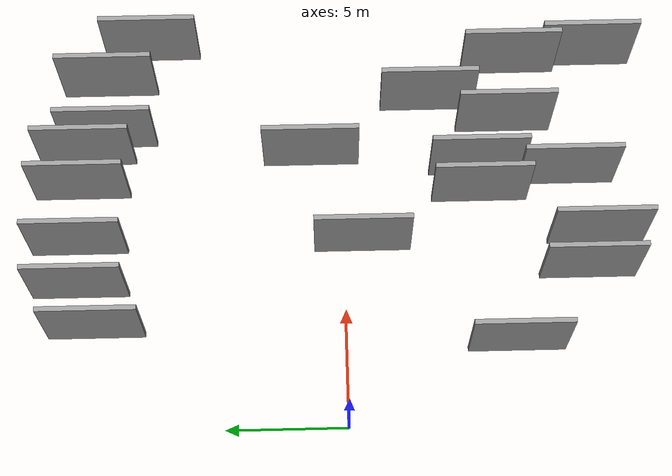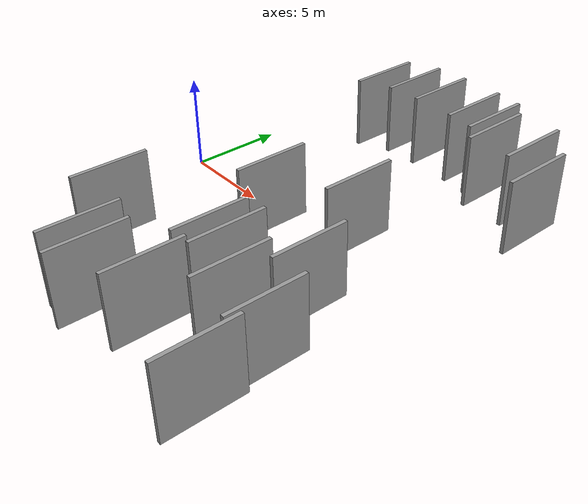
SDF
<sdf version="1.6">
 <world name="default">
  <scene>
   <sky><clouds><speed>12</speed></clouds></sky>
   <ambient>0.4 0.4 0.4 1</ambient>
   <background>0.7 0.7 0.7 1</background>
   <shadows>1</shadows>
  </scene>
  <gravity>0 0 -9.8066</gravity>
  <magnetic_field>6e-06 2.3e-05 -4.2e-05</magnetic_field>
  <physics default="0" name="default_physics" type="ode">
   <ode>
    <solver>
     <type>quick</type>
     <iters>10</iters>
     <sor>1.0</sor>
     <use_dynamic_moi_rescaling>0</use_dynamic_moi_rescaling>
    </solver>
    <constraints>
     <cfm>0</cfm>
     <erp>0.2</erp>
     <contact_max_correcting_vel>100</contact_max_correcting_vel>
     <contact_surface_layer>0.001</contact_surface_layer>
    </constraints>
   </ode>
   <max_step_size>0.004</max_step_size>
   <real_time_factor>1</real_time_factor>
   <real_time_update_rate>250</real_time_update_rate>
  </physics>
  <light name="sun" type="directional">
   <pose>0 0 10 0 0 0</pose>
   <diffuse>0.8 0.8 0.8 1</diffuse>
   <specular>0.2 0.2 0.2 1</specular>
   <attenuation>
    <range>1000</range>
    <constant>0.9</constant>
    <linear>0.01</linear>
    <quadratic>0.001</quadratic>
   </attenuation>
   <direction>-0.5 0.1 -0.9</direction>
  </light>
  <model name="grey_wall_1">
   <static>1</static>
   <pose>6.3063 -10.0664 0.0 0.000000 0.000000 1.570796</pose>
   <link name="link">
    <pose>0 0 2.00 0 0 0</pose>
    <collision name="collision"><geometry><box><size>4.00 0.2 4.00</size></box></geometry></collision>
    <visual name="visual">
     <cast_shadows>0</cast_shadows>
     <geometry><box><size>4.00 0.2 4.00</size></box></geometry>
     <material>
      <script>
       <uri>model://grey_wall/materials/scripts</uri>
       <uri>model://grey_wall/materials/textures</uri>
       <name>vrc/grey_wall</name>
      </script>
     </material>
    </visual>
   </link>
  </model>
  <model name="grey_wall_2">
   <static>1</static>
   <pose>4.1061 10.2583 0.0 0.000000 0.000000 1.570796</pose>
   <link name="link">
    <pose>0 0 2.00 0 0 0</pose>
    <collision name="collision"><geometry><box><size>4.00 0.2 4.00</size></box></geometry></collision>
    <visual name="visual">
     <cast_shadows>0</cast_shadows>
     <geometry><box><size>4.00 0.2 4.00</size></box></geometry>
     <material>
      <script>
       <uri>model://grey_wall/materials/scripts</uri>
       <uri>model://grey_wall/materials/textures</uri>
       <name>vrc/grey_wall</name>
      </script>
     </material>
    </visual>
   </link>
  </model>
  <model name="grey_wall_3">
   <static>1</static>
   <pose>5.8660 10.9579 0.0 0.000000 0.000000 1.570796</pose>
   <link name="link">
    <pose>0 0 2.00 0 0 0</pose>
    <collision name="collision"><geometry><box><size>4.00 0.2 4.00</size></box></geometry></collision>
    <visual name="visual">
     <cast_shadows>0</cast_shadows>
     <geometry><box><size>4.00 0.2 4.00</size></box></geometry>
     <material>
      <script>
       <uri>model://grey_wall/materials/scripts</uri>
       <uri>model://grey_wall/materials/textures</uri>
       <name>vrc/grey_wall</name>
      </script>
     </material>
    </visual>
   </link>
  </model>
  <model name="grey_wall_4">
   <static>1</static>
   <pose>7.7564 11.0392 0.0 0.000000 0.000000 1.570796</pose>
   <link name="link">
    <pose>0 0 2.00 0 0 0</pose>
    <collision name="collision"><geometry><box><size>4.00 0.2 4.00</size></box></geometry></collision>
    <visual name="visual">
     <cast_shadows>0</cast_shadows>
     <geometry><box><size>4.00 0.2 4.00</size></box></geometry>
     <material>
      <script>
       <uri>model://grey_wall/materials/scripts</uri>
       <uri>model://grey_wall/materials/textures</uri>
       <name>vrc/grey_wall</name>
      </script>
     </material>
    </visual>
   </link>
  </model>
  <model name="grey_wall_5">
   <static>1</static>
   <pose>7.8040 -10.4779 0.0 0.000000 0.000000 1.570796</pose>
   <link name="link">
    <pose>0 0 2.00 0 0 0</pose>
    <collision name="collision"><geometry><box><size>4.00 0.2 4.00</size></box></geometry></collision>
    <visual name="visual">
     <cast_shadows>0</cast_shadows>
     <geometry><box><size>4.00 0.2 4.00</size></box></geometry>
     <material>
      <script>
       <uri>model://grey_wall/materials/scripts</uri>
       <uri>model://grey_wall/materials/textures</uri>
       <name>vrc/grey_wall</name>
      </script>
     </material>
    </visual>
   </link>
  </model>
  <model name="grey_wall_6">
   <static>1</static>
   <pose>11.5746 1.3347 0.0 0.000000 0.000000 1.570796</pose>
   <link name="link">
    <pose>0 0 2.00 0 0 0</pose>
    <collision name="collision"><geometry><box><size>4.00 0.2 4.00</size></box></geometry></collision>
    <visual name="visual">
     <cast_shadows>0</cast_shadows>
     <geometry><box><size>4.00 0.2 4.00</size></box></geometry>
     <material>
      <script>
       <uri>model://grey_wall/materials/scripts</uri>
       <uri>model://grey_wall/materials/textures</uri>
       <name>vrc/grey_wall</name>
      </script>
     </material>
    </visual>
   </link>
  </model>
  <model name="grey_wall_7">
   <static>1</static>
   <pose>15.6903 -7.1706 0.0 0.000000 0.000000 1.570796</pose>
   <link name="link">
    <pose>0 0 2.00 0 0 0</pose>
    <collision name="collision"><geometry><box><size>4.00 0.2 4.00</size></box></geometry></collision>
    <visual name="visual">
     <cast_shadows>0</cast_shadows>
     <geometry><box><size>4.00 0.2 4.00</size></box></geometry>
     <material>
      <script>
       <uri>model://grey_wall/materials/scripts</uri>
       <uri>model://grey_wall/materials/textures</uri>
       <name>vrc/grey_wall</name>
      </script>
     </material>
    </visual>
   </link>
  </model>
  <model name="grey_wall_8">
   <static>1</static>
   <pose>14.0277 -3.6547 0.0 0.000000 0.000000 1.570796</pose>
   <link name="link">
    <pose>0 0 2.00 0 0 0</pose>
    <collision name="collision"><geometry><box><size>4.00 0.2 4.00</size></box></geometry></collision>
    <visual name="visual">
     <cast_shadows>0</cast_shadows>
     <geometry><box><size>4.00 0.2 4.00</size></box></geometry>
     <material>
      <script>
       <uri>model://grey_wall/materials/scripts</uri>
       <uri>model://grey_wall/materials/textures</uri>
       <name>vrc/grey_wall</name>
      </script>
     </material>
    </visual>
   </link>
  </model>
  <model name="grey_wall_9">
   <static>1</static>
   <pose>16.6101 8.0653 0.0 0.000000 0.000000 1.570796</pose>
   <link name="link">
    <pose>0 0 2.00 0 0 0</pose>
    <collision name="collision"><geometry><box><size>4.00 0.2 4.00</size></box></geometry></collision>
    <visual name="visual">
     <cast_shadows>0</cast_shadows>
     <geometry><box><size>4.00 0.2 4.00</size></box></geometry>
     <material>
      <script>
       <uri>model://grey_wall/materials/scripts</uri>
       <uri>model://grey_wall/materials/textures</uri>
       <name>vrc/grey_wall</name>
      </script>
     </material>
    </visual>
   </link>
  </model>
  <model name="grey_wall_10">
   <static>1</static>
   <pose>12.9653 -6.8424 0.0 0.000000 0.000000 1.570796</pose>
   <link name="link">
    <pose>0 0 2.00 0 0 0</pose>
    <collision name="collision"><geometry><box><size>4.00 0.2 4.00</size></box></geometry></collision>
    <visual name="visual">
     <cast_shadows>0</cast_shadows>
     <geometry><box><size>4.00 0.2 4.00</size></box></geometry>
     <material>
      <script>
       <uri>model://grey_wall/materials/scripts</uri>
       <uri>model://grey_wall/materials/textures</uri>
       <name>vrc/grey_wall</name>
      </script>
     </material>
    </visual>
   </link>
  </model>
  <model name="grey_wall_11">
   <static>1</static>
   <pose>3.2163 -6.9590 0.0 0.000000 0.000000 1.570796</pose>
   <link name="link">
    <pose>0 0 2.00 0 0 0</pose>
    <collision name="collision"><geometry><box><size>4.00 0.2 4.00</size></box></geometry></collision>
    <visual name="visual">
     <cast_shadows>0</cast_shadows>
     <geometry><box><size>4.00 0.2 4.00</size></box></geometry>
     <material>
      <script>
       <uri>model://grey_wall/materials/scripts</uri>
       <uri>model://grey_wall/materials/textures</uri>
       <name>vrc/grey_wall</name>
      </script>
     </material>
    </visual>
   </link>
  </model>
  <model name="grey_wall_12">
   <static>1</static>
   <pose>10.5106 -9.3970 0.0 0.000000 0.000000 1.570796</pose>
   <link name="link">
    <pose>0 0 2.00 0 0 0</pose>
    <collision name="collision"><geometry><box><size>4.00 0.2 4.00</size></box></geometry></collision>
    <visual name="visual">
     <cast_shadows>0</cast_shadows>
     <geometry><box><size>4.00 0.2 4.00</size></box></geometry>
     <material>
      <script>
       <uri>model://grey_wall/materials/scripts</uri>
       <uri>model://grey_wall/materials/textures</uri>
       <name>vrc/grey_wall</name>
      </script>
     </material>
    </visual>
   </link>
  </model>
  <model name="grey_wall_13">
   <static>1</static>
   <pose>14.9527 9.8604 0.0 0.000000 0.000000 1.570796</pose>
   <link name="link">
    <pose>0 0 2.00 0 0 0</pose>
    <collision name="collision"><geometry><box><size>4.00 0.2 4.00</size></box></geometry></collision>
    <visual name="visual">
     <cast_shadows>0</cast_shadows>
     <geometry><box><size>4.00 0.2 4.00</size></box></geometry>
     <material>
      <script>
       <uri>model://grey_wall/materials/scripts</uri>
       <uri>model://grey_wall/materials/textures</uri>
       <name>vrc/grey_wall</name>
      </script>
     </material>
    </visual>
   </link>
  </model>
  <model name="grey_wall_14">
   <static>1</static>
   <pose>7.6722 -0.7406 0.0 0.000000 0.000000 1.570796</pose>
   <link name="link">
    <pose>0 0 2.00 0 0 0</pose>
    <collision name="collision"><geometry><box><size>4.00 0.2 4.00</size></box></geometry></collision>
    <visual name="visual">
     <cast_shadows>0</cast_shadows>
     <geometry><box><size>4.00 0.2 4.00</size></box></geometry>
     <material>
      <script>
       <uri>model://grey_wall/materials/scripts</uri>
       <uri>model://grey_wall/materials/textures</uri>
       <name>vrc/grey_wall</name>
      </script>
     </material>
    </visual>
   </link>
  </model>
  <model name="grey_wall_15">
   <static>1</static>
   <pose>9.7931 -5.7080 0.0 0.000000 0.000000 1.570796</pose>
   <link name="link">
    <pose>0 0 2.00 0 0 0</pose>
    <collision name="collision"><geometry><box><size>4.00 0.2 4.00</size></box></geometry></collision>
    <visual name="visual">
     <cast_shadows>0</cast_shadows>
     <geometry><box><size>4.00 0.2 4.00</size></box></geometry>
     <material>
      <script>
       <uri>model://grey_wall/materials/scripts</uri>
       <uri>model://grey_wall/materials/textures</uri>
       <name>vrc/grey_wall</name>
      </script>
     </material>
    </visual>
   </link>
  </model>
  <model name="grey_wall_16">
   <static>1</static>
   <pose>12.5636 9.8685 0.0 0.000000 0.000000 1.570796</pose>
   <link name="link">
    <pose>0 0 2.00 0 0 0</pose>
    <collision name="collision"><geometry><box><size>4.00 0.2 4.00</size></box></geometry></collision>
    <visual name="visual">
     <cast_shadows>0</cast_shadows>
     <geometry><box><size>4.00 0.2 4.00</size></box></geometry>
     <material>
      <script>
       <uri>model://grey_wall/materials/scripts</uri>
       <uri>model://grey_wall/materials/textures</uri>
       <name>vrc/grey_wall</name>
      </script>
     </material>
    </visual>
   </link>
  </model>
  <model name="grey_wall_17">
   <static>1</static>
   <pose>10.9870 -5.6333 0.0 0.000000 0.000000 1.570796</pose>
   <link name="link">
    <pose>0 0 2.00 0 0 0</pose>
    <collision name="collision"><geometry><box><size>4.00 0.2 4.00</size></box></geometry></collision>
    <visual name="visual">
     <cast_shadows>0</cast_shadows>
     <geometry><box><size>4.00 0.2 4.00</size></box></geometry>
     <material>
      <script>
       <uri>model://grey_wall/materials/scripts</uri>
       <uri>model://grey_wall/materials/textures</uri>
       <name>vrc/grey_wall</name>
      </script>
     </material>
    </visual>
   </link>
  </model>
  <model name="grey_wall_18">
   <static>1</static>
   <pose>15.9986 -10.4581 0.0 0.000000 0.000000 1.570796</pose>
   <link name="link">
    <pose>0 0 2.00 0 0 0</pose>
    <collision name="collision"><geometry><box><size>4.00 0.2 4.00</size></box></geometry></collision>
    <visual name="visual">
     <cast_shadows>0</cast_shadows>
     <geometry><box><size>4.00 0.2 4.00</size></box></geometry>
     <material>
      <script>
       <uri>model://grey_wall/materials/scripts</uri>
       <uri>model://grey_wall/materials/textures</uri>
       <name>vrc/grey_wall</name>
      </script>
     </material>
    </visual>
   </link>
  </model>
  <model name="grey_wall_19">
   <static>1</static>
   <pose>11.7682 10.7587 0.0 0.000000 0.000000 1.570796</pose>
   <link name="link">
    <pose>0 0 2.00 0 0 0</pose>
    <collision name="collision"><geometry><box><size>4.00 0.2 4.00</size></box></geometry></collision>
    <visual name="visual">
     <cast_shadows>0</cast_shadows>
     <geometry><box><size>4.00 0.2 4.00</size></box></geometry>
     <material>
      <script>
       <uri>model://grey_wall/materials/scripts</uri>
       <uri>model://grey_wall/materials/textures</uri>
       <name>vrc/grey_wall</name>
      </script>
     </material>
    </visual>
   </link>
  </model>
  <model name="grey_wall_20">
   <static>1</static>
   <pose>10.2295 10.9609 0.0 0.000000 0.000000 1.570796</pose>
   <link name="link">
    <pose>0 0 2.00 0 0 0</pose>
    <collision name="collision"><geometry><box><size>4.00 0.2 4.00</size></box></geometry></collision>
    <visual name="visual">
     <cast_shadows>0</cast_shadows>
     <geometry><box><size>4.00 0.2 4.00</size></box></geometry>
     <material>
      <script>
       <uri>model://grey_wall/materials/scripts</uri>
       <uri>model://grey_wall/materials/textures</uri>
       <name>vrc/grey_wall</name>
      </script>
     </material>
    </visual>
   </link>
  </model>
 </world>
</sdf>
